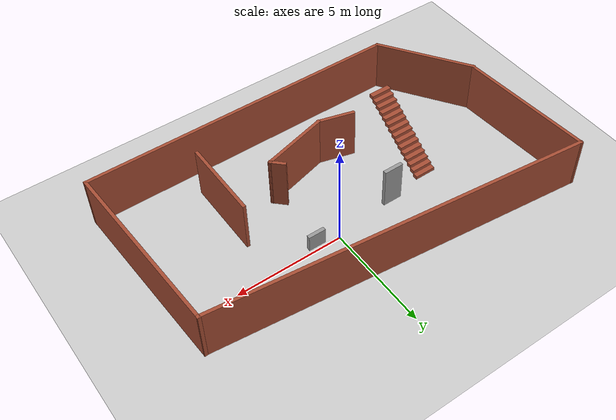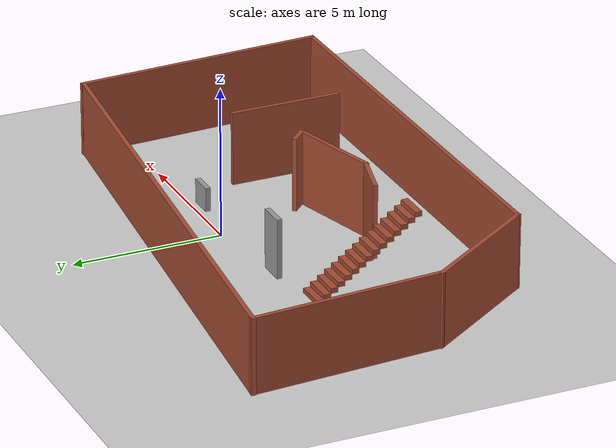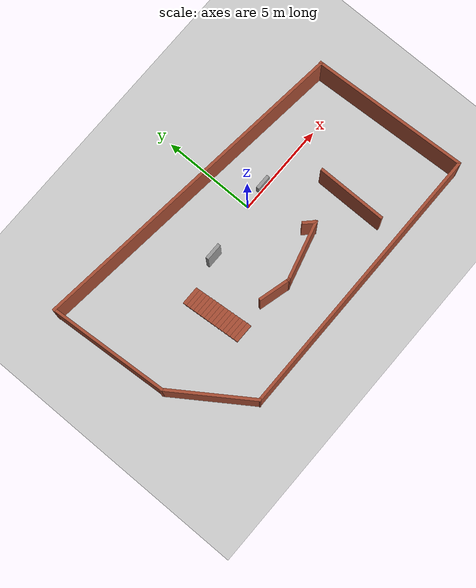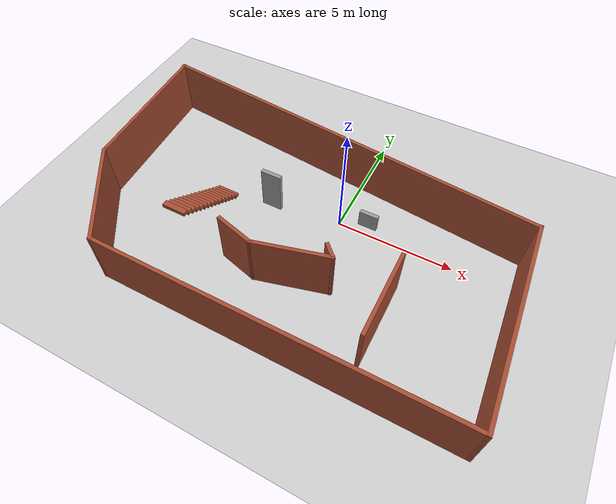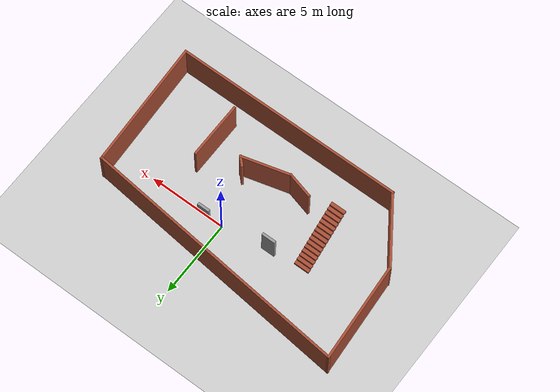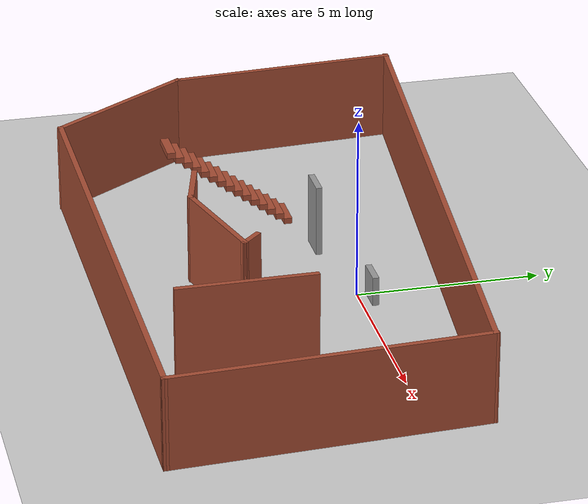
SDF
<sdf version="1.7">
 <world name="default">
  <light name="sun" type="directional">
   <pose>0 0 10 0 -0 0</pose>
   <diffuse>0.8 0.8 0.8 1</diffuse>
   <specular>0.2 0.2 0.2 1</specular>
   <attenuation>
    <range>1000</range>
    <constant>0.9</constant>
    <linear>0.01</linear>
    <quadratic>0.001</quadratic>
   </attenuation>
   <direction>-0.5 0.1 -0.9</direction>
   <spot><inner_angle>0</inner_angle><outer_angle>0</outer_angle><falloff>0</falloff></spot>
  </light>
  <model name="ground_plane">
   <static>1</static>
   <link name="link">
    <collision name="collision">
     <geometry><plane><normal>0 0 1</normal><size>100 100</size></plane></geometry>
     <surface>
      <contact><collide_bitmask>65535</collide_bitmask></contact>
      <friction><ode><mu>100</mu><mu2>50</mu2></ode></friction>
     </surface>
    </collision>
    <visual name="visual">
     <cast_shadows>0</cast_shadows>
     <geometry><plane><normal>0 0 1</normal><size>100 100</size></plane></geometry>
     <material>
      <script><uri>file://media/materials/scripts/gazebo.material</uri><name>Gazebo/Grey</name></script>
     </material>
    </visual>
   </link>
  </model>
  <gravity>0 0 -9.8</gravity>
  <magnetic_field>6e-06 2.3e-05 -4.2e-05</magnetic_field>
  <atmosphere type="adiabatic"/>
  <physics type="ode">
   <max_step_size>0.001</max_step_size>
   <real_time_factor>1</real_time_factor>
   <real_time_update_rate>1000</real_time_update_rate>
  </physics>
  <scene><ambient>0.4 0.4 0.4 1</ambient><background>0.7 0.7 0.7 1</background><shadows>1</shadows></scene>
  <spherical_coordinates>
   <surface_model>EARTH_WGS84</surface_model>
   <latitude_deg>0</latitude_deg>
   <longitude_deg>0</longitude_deg>
   <elevation>0</elevation>
   <heading_deg>0</heading_deg>
  </spherical_coordinates>
  <model name="Untitled">
   <pose>-1.13179 -1.65941 0 0 -0 0</pose>
   <link name="Wall_0">
    <collision name="Wall_0_Collision">
     <geometry><box><size>6.4652 0.15 2.5</size></box></geometry>
     <pose>0 0 1.25 0 -0 0</pose>
    </collision>
    <visual name="Wall_0_Visual">
     <pose>0 0 1.25 0 -0 0</pose>
     <geometry><box><size>6.4652 0.15 2.5</size></box></geometry>
     <material>
      <script><uri>file://media/materials/scripts/gazebo.material</uri><name>Gazebo/Bricks</name></script>
      <ambient>1 1 1 1</ambient>
     </material>
     <meta><layer>0</layer></meta>
    </visual>
    <pose>-8.69659 1.92106 0 0 -0 1.63454</pose>
   </link>
   <link name="Wall_1">
    <collision name="Wall_1_Collision">
     <geometry><box><size>17.6853 0.15 2.5</size></box></geometry>
     <pose>0 0 1.25 0 -0 0</pose>
    </collision>
    <visual name="Wall_1_Visual">
     <pose>0 0 1.25 0 -0 0</pose>
     <geometry><box><size>17.6853 0.15 2.5</size></box></geometry>
     <material>
      <script><uri>file://media/materials/scripts/gazebo.material</uri><name>Gazebo/Bricks</name></script>
      <ambient>1 1 1 1</ambient>
     </material>
     <meta><layer>0</layer></meta>
    </visual>
    <pose>-0.19916 4.14696 0 0 -0 -0.105731</pose>
   </link>
   <link name="Wall_2">
    <collision name="Wall_2_Collision">
     <geometry><box><size>8.45213 0.15 2.5</size></box></geometry>
     <pose>0 0 1.25 0 -0 0</pose>
    </collision>
    <visual name="Wall_2_Visual">
     <pose>0 0 1.25 0 -0 0</pose>
     <geometry><box><size>8.45213 0.15 2.5</size></box></geometry>
     <material>
      <script><uri>file://media/materials/scripts/gazebo.material</uri><name>Gazebo/Bricks</name></script>
      <ambient>1 1 1 1</ambient>
     </material>
     <meta><layer>0</layer></meta>
    </visual>
    <pose>8.72066 -0.904398 0 0 -0 -1.52232</pose>
   </link>
   <link name="Wall_3">
    <collision name="Wall_3_Collision">
     <geometry><box><size>15 0.15 2.5</size></box></geometry>
     <pose>0 0 1.25 0 -0 0</pose>
    </collision>
    <visual name="Wall_3_Visual">
     <pose>0 0 1.25 0 -0 0</pose>
     <geometry><box><size>15 0.15 2.5</size></box></geometry>
     <material>
      <script><uri>file://media/materials/scripts/gazebo.material</uri><name>Gazebo/Bricks</name></script>
      <ambient>1 1 1 1</ambient>
     </material>
     <meta><layer>0</layer></meta>
    </visual>
    <pose>1.49679 -5.05059 0 0 -0 3.14159</pose>
   </link>
   <link name="Wall_4">
    <collision name="Wall_4_Collision">
     <geometry><box><size>4.76414 0.15 2.5</size></box></geometry>
     <pose>0 0 1.25 0 -0 0</pose>
    </collision>
    <visual name="Wall_4_Visual">
     <pose>0 0 1.25 0 -0 0</pose>
     <geometry><box><size>4.76414 0.15 2.5</size></box></geometry>
     <material>
      <script><uri>file://media/materials/scripts/gazebo.material</uri><name>Gazebo/Bricks</name></script>
      <ambient>1 1 1 1</ambient>
     </material>
     <meta><layer>0</layer></meta>
    </visual>
    <pose>-7.22189 -3.14036 0 0 -0 2.16608</pose>
   </link>
   <static>1</static>
  </model>
  <model name="Untitled_0">
   <pose>-1.1425 -2.7925 0 0 -0 0</pose>
   <link name="Door_0">
    <collision name="Door_0_Collision">
     <geometry><box><size>0.9 0.17 2</size></box></geometry>
     <pose>0 0 1 0 -0 0</pose>
    </collision>
    <visual name="Door_0_Visual">
     <pose>0 0 1 0 -0 0</pose>
     <geometry><box><size>0.9 0.17 2</size></box></geometry>
     <material>
      <script><uri>file://media/materials/scripts/gazebo.material</uri><name>Gazebo/Grey</name></script>
     </material>
    </visual>
    <pose>-1.8975 2.3825 0 0 -0 0</pose>
   </link>
   <link name="Stairs_0">
    <visual name="Stairs_0_Visual_0">
     <pose>-4.0275 2.00583 0.083333 0 -0 0</pose>
     <geometry><box><size>1 0.233333 0.166667</size></box></geometry>
     <material>
      <script><uri>file://media/materials/scripts/gazebo.material</uri><name>Gazebo/Bricks</name></script>
      <ambient>1 1 1 1</ambient>
     </material>
     <meta><layer>0</layer></meta>
    </visual>
    <collision name="Stairs_0_Collision_0">
     <geometry><box><size>1 0.233333 0.166667</size></box></geometry>
     <pose>-4.0275 2.00583 0.083333 0 -0 0</pose>
    </collision>
    <visual name="Stairs_0_Visual_1">
     <pose>-4.0275 1.7725 0.25 0 -0 0</pose>
     <geometry><box><size>1 0.233333 0.166667</size></box></geometry>
     <material>
      <script><uri>file://media/materials/scripts/gazebo.material</uri><name>Gazebo/Bricks</name></script>
      <ambient>1 1 1 1</ambient>
     </material>
     <meta><layer>0</layer></meta>
    </visual>
    <collision name="Stairs_0_Collision_1">
     <geometry><box><size>1 0.233333 0.166667</size></box></geometry>
     <pose>-4.0275 1.7725 0.25 0 -0 0</pose>
    </collision>
    <visual name="Stairs_0_Visual_2">
     <pose>-4.0275 1.53917 0.416667 0 -0 0</pose>
     <geometry><box><size>1 0.233333 0.166667</size></box></geometry>
     <material>
      <script><uri>file://media/materials/scripts/gazebo.material</uri><name>Gazebo/Bricks</name></script>
      <ambient>1 1 1 1</ambient>
     </material>
     <meta><layer>0</layer></meta>
    </visual>
    <collision name="Stairs_0_Collision_2">
     <geometry><box><size>1 0.233333 0.166667</size></box></geometry>
     <pose>-4.0275 1.53917 0.416667 0 -0 0</pose>
    </collision>
    <visual name="Stairs_0_Visual_3">
     <pose>-4.0275 1.30583 0.583333 0 -0 0</pose>
     <geometry><box><size>1 0.233333 0.166667</size></box></geometry>
     <material>
      <script><uri>file://media/materials/scripts/gazebo.material</uri><name>Gazebo/Bricks</name></script>
      <ambient>1 1 1 1</ambient>
     </material>
     <meta><layer>0</layer></meta>
    </visual>
    <collision name="Stairs_0_Collision_3">
     <geometry><box><size>1 0.233333 0.166667</size></box></geometry>
     <pose>-4.0275 1.30583 0.583333 0 -0 0</pose>
    </collision>
    <visual name="Stairs_0_Visual_4">
     <pose>-4.0275 1.0725 0.75 0 -0 0</pose>
     <geometry><box><size>1 0.233333 0.166667</size></box></geometry>
     <material>
      <script><uri>file://media/materials/scripts/gazebo.material</uri><name>Gazebo/Bricks</name></script>
      <ambient>1 1 1 1</ambient>
     </material>
     <meta><layer>0</layer></meta>
    </visual>
    <collision name="Stairs_0_Collision_4">
     <geometry><box><size>1 0.233333 0.166667</size></box></geometry>
     <pose>-4.0275 1.0725 0.75 0 -0 0</pose>
    </collision>
    <visual name="Stairs_0_Visual_5">
     <pose>-4.0275 0.839167 0.916667 0 -0 0</pose>
     <geometry><box><size>1 0.233333 0.166667</size></box></geometry>
     <material>
      <script><uri>file://media/materials/scripts/gazebo.material</uri><name>Gazebo/Bricks</name></script>
      <ambient>1 1 1 1</ambient>
     </material>
     <meta><layer>0</layer></meta>
    </visual>
    <collision name="Stairs_0_Collision_5">
     <geometry><box><size>1 0.233333 0.166667</size></box></geometry>
     <pose>-4.0275 0.839167 0.916667 0 -0 0</pose>
    </collision>
    <visual name="Stairs_0_Visual_6">
     <pose>-4.0275 0.605833 1.08333 0 -0 0</pose>
     <geometry><box><size>1 0.233333 0.166667</size></box></geometry>
     <material>
      <script><uri>file://media/materials/scripts/gazebo.material</uri><name>Gazebo/Bricks</name></script>
      <ambient>1 1 1 1</ambient>
     </material>
     <meta><layer>0</layer></meta>
    </visual>
    <collision name="Stairs_0_Collision_6">
     <geometry><box><size>1 0.233333 0.166667</size></box></geometry>
     <pose>-4.0275 0.605833 1.08333 0 -0 0</pose>
    </collision>
    <visual name="Stairs_0_Visual_7">
     <pose>-4.0275 0.3725 1.25 0 -0 0</pose>
     <geometry><box><size>1 0.233333 0.166667</size></box></geometry>
     <material>
      <script><uri>file://media/materials/scripts/gazebo.material</uri><name>Gazebo/Bricks</name></script>
      <ambient>1 1 1 1</ambient>
     </material>
     <meta><layer>0</layer></meta>
    </visual>
    <collision name="Stairs_0_Collision_7">
     <geometry><box><size>1 0.233333 0.166667</size></box></geometry>
     <pose>-4.0275 0.3725 1.25 0 -0 0</pose>
    </collision>
    <visual name="Stairs_0_Visual_8">
     <pose>-4.0275 0.139167 1.41667 0 -0 0</pose>
     <geometry><box><size>1 0.233333 0.166667</size></box></geometry>
     <material>
      <script><uri>file://media/materials/scripts/gazebo.material</uri><name>Gazebo/Bricks</name></script>
      <ambient>1 1 1 1</ambient>
     </material>
     <meta><layer>0</layer></meta>
    </visual>
    <collision name="Stairs_0_Collision_8">
     <geometry><box><size>1 0.233333 0.166667</size></box></geometry>
     <pose>-4.0275 0.139167 1.41667 0 -0 0</pose>
    </collision>
    <visual name="Stairs_0_Visual_9">
     <pose>-4.0275 -0.094167 1.58333 0 -0 0</pose>
     <geometry><box><size>1 0.233333 0.166667</size></box></geometry>
     <material>
      <script><uri>file://media/materials/scripts/gazebo.material</uri><name>Gazebo/Bricks</name></script>
      <ambient>1 1 1 1</ambient>
     </material>
     <meta><layer>0</layer></meta>
    </visual>
    <collision name="Stairs_0_Collision_9">
     <geometry><box><size>1 0.233333 0.166667</size></box></geometry>
     <pose>-4.0275 -0.094167 1.58333 0 -0 0</pose>
    </collision>
    <visual name="Stairs_0_Visual_10">
     <pose>-4.0275 -0.3275 1.75 0 -0 0</pose>
     <geometry><box><size>1 0.233333 0.166667</size></box></geometry>
     <material>
      <script><uri>file://media/materials/scripts/gazebo.material</uri><name>Gazebo/Bricks</name></script>
      <ambient>1 1 1 1</ambient>
     </material>
     <meta><layer>0</layer></meta>
    </visual>
    <collision name="Stairs_0_Collision_10">
     <geometry><box><size>1 0.233333 0.166667</size></box></geometry>
     <pose>-4.0275 -0.3275 1.75 0 -0 0</pose>
    </collision>
    <visual name="Stairs_0_Visual_11">
     <pose>-4.0275 -0.560833 1.91667 0 -0 0</pose>
     <geometry><box><size>1 0.233333 0.166667</size></box></geometry>
     <material>
      <script><uri>file://media/materials/scripts/gazebo.material</uri><name>Gazebo/Bricks</name></script>
      <ambient>1 1 1 1</ambient>
     </material>
     <meta><layer>0</layer></meta>
    </visual>
    <collision name="Stairs_0_Collision_11">
     <geometry><box><size>1 0.233333 0.166667</size></box></geometry>
     <pose>-4.0275 -0.560833 1.91667 0 -0 0</pose>
    </collision>
    <visual name="Stairs_0_Visual_12">
     <pose>-4.0275 -0.794167 2.08333 0 -0 0</pose>
     <geometry><box><size>1 0.233333 0.166667</size></box></geometry>
     <material>
      <script><uri>file://media/materials/scripts/gazebo.material</uri><name>Gazebo/Bricks</name></script>
      <ambient>1 1 1 1</ambient>
     </material>
     <meta><layer>0</layer></meta>
    </visual>
    <collision name="Stairs_0_Collision_12">
     <geometry><box><size>1 0.233333 0.166667</size></box></geometry>
     <pose>-4.0275 -0.794167 2.08333 0 -0 0</pose>
    </collision>
    <visual name="Stairs_0_Visual_13">
     <pose>-4.0275 -1.0275 2.25 0 -0 0</pose>
     <geometry><box><size>1 0.233333 0.166667</size></box></geometry>
     <material>
      <script><uri>file://media/materials/scripts/gazebo.material</uri><name>Gazebo/Bricks</name></script>
      <ambient>1 1 1 1</ambient>
     </material>
     <meta><layer>0</layer></meta>
    </visual>
    <collision name="Stairs_0_Collision_13">
     <geometry><box><size>1 0.233333 0.166667</size></box></geometry>
     <pose>-4.0275 -1.0275 2.25 0 -0 0</pose>
    </collision>
    <visual name="Stairs_0_Visual_14">
     <pose>-4.0275 -1.26083 2.41667 0 -0 0</pose>
     <geometry><box><size>1 0.233333 0.166667</size></box></geometry>
     <material>
      <script><uri>file://media/materials/scripts/gazebo.material</uri><name>Gazebo/Bricks</name></script>
      <ambient>1 1 1 1</ambient>
     </material>
     <meta><layer>0</layer></meta>
    </visual>
    <collision name="Stairs_0_Collision_14">
     <geometry><box><size>1 0.233333 0.166667</size></box></geometry>
     <pose>-4.0275 -1.26083 2.41667 0 -0 0</pose>
    </collision>
   </link>
   <link name="Wall_0">
    <collision name="Wall_0_Collision">
     <geometry><box><size>1.75 0.15 2.5</size></box></geometry>
     <pose>0 0 1.25 0 -0 0</pose>
    </collision>
    <visual name="Wall_0_Visual">
     <pose>0 0 1.25 0 -0 0</pose>
     <geometry><box><size>1.75 0.15 2.5</size></box></geometry>
     <material>
      <script><uri>file://media/materials/scripts/gazebo.material</uri><name>Gazebo/Bricks</name></script>
      <ambient>1 1 1 1</ambient>
     </material>
     <meta><layer>0</layer></meta>
    </visual>
    <pose>-1.47476 -1.09455 0 0 -0 -0.261799</pose>
   </link>
   <link name="Wall_1">
    <collision name="Wall_1_Collision">
     <geometry><box><size>3.25 0.15 2.5</size></box></geometry>
     <pose>0 0 1.25 0 -0 0</pose>
    </collision>
    <visual name="Wall_1_Visual">
     <pose>0 0 1.25 0 -0 0</pose>
     <geometry><box><size>3.25 0.15 2.5</size></box></geometry>
     <material>
      <script><uri>file://media/materials/scripts/gazebo.material</uri><name>Gazebo/Bricks</name></script>
      <ambient>1 1 1 1</ambient>
     </material>
     <meta><layer>0</layer></meta>
    </visual>
    <pose>0.795166 -0.900441 0 0 -0 0.261799</pose>
   </link>
   <link name="Wall_2">
    <collision name="Wall_2_Collision">
     <geometry><box><size>0.75 0.15 2.5</size></box></geometry>
     <pose>0 0 1.25 0 -0 0</pose>
    </collision>
    <visual name="Wall_2_Visual">
     <pose>0 0 1.25 0 -0 0</pose>
     <geometry><box><size>0.75 0.15 2.5</size></box></geometry>
     <material>
      <script><uri>file://media/materials/scripts/gazebo.material</uri><name>Gazebo/Bricks</name></script>
      <ambient>1 1 1 1</ambient>
     </material>
     <meta><layer>0</layer></meta>
    </visual>
    <pose>2.08022 -0.287139 0 0 -0 2.35619</pose>
   </link>
   <link name="Wall_4">
    <collision name="Wall_4_Collision">
     <geometry><box><size>3.75 0.15 2.5</size></box></geometry>
     <pose>0 0 1.25 0 -0 0</pose>
    </collision>
    <visual name="Wall_4_Visual">
     <pose>0 0 1.25 0 -0 0</pose>
     <geometry><box><size>3.75 0.15 2.5</size></box></geometry>
     <material>
      <script><uri>file://media/materials/scripts/gazebo.material</uri><name>Gazebo/Bricks</name></script>
      <ambient>1 1 1 1</ambient>
     </material>
     <meta><layer>0</layer></meta>
    </visual>
    <pose>4.4525 -0.9175 0 0 -0 -1.5708</pose>
   </link>
   <link name="Window_0">
    <collision name="Window_0_Collision">
     <geometry><box><size>0.8 0.17 0.8</size></box></geometry>
     <pose>0 0 0.4 0 -0 0</pose>
    </collision>
    <visual name="Window_0_Visual">
     <pose>0 0 0.4 0 -0 0</pose>
     <geometry><box><size>0.8 0.17 0.8</size></box></geometry>
     <material>
      <script><uri>file://media/materials/scripts/gazebo.material</uri><name>Gazebo/Grey</name></script>
     </material>
    </visual>
    <pose>2.3725 2.8725 0.5 0 -0 0</pose>
   </link>
   <static>1</static>
  </model>
 </world>
</sdf>
